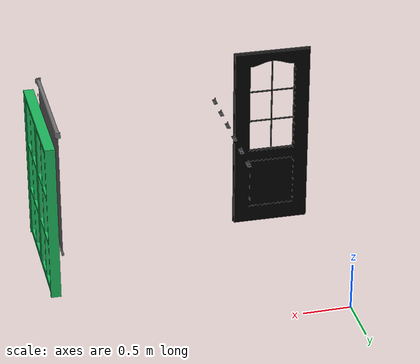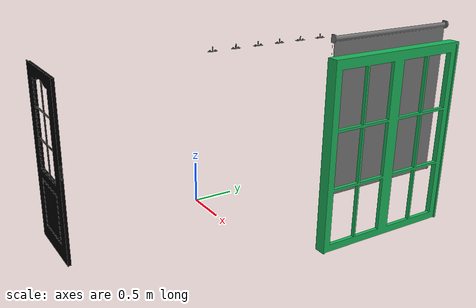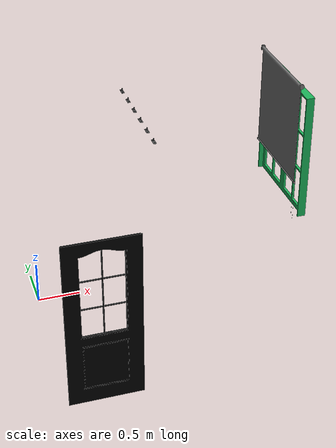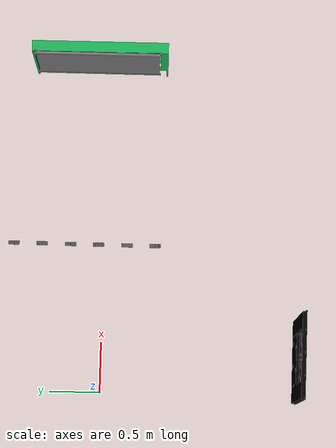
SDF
<sdf version="1.6">
 <world name="default">
  <model name="part60.obj">
   <static>1</static>
   <pose>-12.0 -13.9 0 0 0 0</pose>
   <link name="link_d60">
    <inertial>
     <mass>0</mass>
     <inertia>
      <ixx>0.166667</ixx>
      <ixy>0</ixy>
      <ixz>0</ixz>
      <iyy>0.166667</iyy>
      <iyz>0</iyz>
      <izz>0.166667</izz>
     </inertia>
    </inertial>
    <collision concave="yes" name="collision_60">
     <geometry><mesh><scale>.1 .1 .1</scale><uri>fatihrmutfak/part60.obj</uri></mesh></geometry>
    </collision>
    <visual name="visual">
     <geometry><mesh><scale>.1 .1 .1</scale><uri>fatihrmutfak/part60.obj</uri></mesh></geometry>
     <material>
      <ambient>1 0 0 1</ambient>
      <diffuse>0.337300 0.337300 0.337300 1</diffuse>
      <specular>0.1 0.1 0.1 1</specular>
      <emissive>0 0 0 0</emissive>
     </material>
    </visual>
   </link>
  </model>
  <model name="part61.obj">
   <static>1</static>
   <pose>-12.0 -13.9 0 0 0 0</pose>
   <link name="link_d61">
    <inertial>
     <mass>0</mass>
     <inertia>
      <ixx>0.166667</ixx>
      <ixy>0</ixy>
      <ixz>0</ixz>
      <iyy>0.166667</iyy>
      <iyz>0</iyz>
      <izz>0.166667</izz>
     </inertia>
    </inertial>
    <collision concave="yes" name="collision_61">
     <geometry><mesh><scale>.1 .1 .1</scale><uri>fatihrmutfak/part61.obj</uri></mesh></geometry>
    </collision>
    <visual name="visual">
     <geometry><mesh><scale>.1 .1 .1</scale><uri>fatihrmutfak/part61.obj</uri></mesh></geometry>
     <material>
      <ambient>1 0 0 1</ambient>
      <diffuse>0.337300 0.337300 0.337300 1</diffuse>
      <specular>0.1 0.1 0.1 1</specular>
      <emissive>0 0 0 0</emissive>
     </material>
    </visual>
   </link>
  </model>
  <model name="part62.obj">
   <static>1</static>
   <pose>-12.0 -13.9 0 0 0 0</pose>
   <link name="link_d62">
    <inertial>
     <mass>0</mass>
     <inertia>
      <ixx>0.166667</ixx>
      <ixy>0</ixy>
      <ixz>0</ixz>
      <iyy>0.166667</iyy>
      <iyz>0</iyz>
      <izz>0.166667</izz>
     </inertia>
    </inertial>
    <collision concave="yes" name="collision_62">
     <geometry><mesh><scale>.1 .1 .1</scale><uri>fatihrmutfak/part62.obj</uri></mesh></geometry>
    </collision>
    <visual name="visual">
     <geometry><mesh><scale>.1 .1 .1</scale><uri>fatihrmutfak/part62.obj</uri></mesh></geometry>
     <material>
      <ambient>1 0 0 1</ambient>
      <diffuse>0.337300 0.337300 0.337300 1</diffuse>
      <specular>0.1 0.1 0.1 1</specular>
      <emissive>0 0 0 0</emissive>
     </material>
    </visual>
   </link>
  </model>
  <model name="part63.obj">
   <static>1</static>
   <pose>-12.0 -13.9 0 0 0 0</pose>
   <link name="link_d63">
    <inertial>
     <mass>0</mass>
     <inertia>
      <ixx>0.166667</ixx>
      <ixy>0</ixy>
      <ixz>0</ixz>
      <iyy>0.166667</iyy>
      <iyz>0</iyz>
      <izz>0.166667</izz>
     </inertia>
    </inertial>
    <collision concave="yes" name="collision_63">
     <geometry><mesh><scale>.1 .1 .1</scale><uri>fatihrmutfak/part63.obj</uri></mesh></geometry>
    </collision>
    <visual name="visual">
     <geometry><mesh><scale>.1 .1 .1</scale><uri>fatihrmutfak/part63.obj</uri></mesh></geometry>
     <material>
      <ambient>1 0 0 1</ambient>
      <diffuse>0.337300 0.337300 0.337300 1</diffuse>
      <specular>0.1 0.1 0.1 1</specular>
      <emissive>0 0 0 0</emissive>
     </material>
    </visual>
   </link>
  </model>
  <model name="part64.obj">
   <static>1</static>
   <pose>-12.0 -13.9 0 0 0 0</pose>
   <link name="link_d64">
    <inertial>
     <mass>0</mass>
     <inertia>
      <ixx>0.166667</ixx>
      <ixy>0</ixy>
      <ixz>0</ixz>
      <iyy>0.166667</iyy>
      <iyz>0</iyz>
      <izz>0.166667</izz>
     </inertia>
    </inertial>
    <collision concave="yes" name="collision_64">
     <geometry><mesh><scale>.1 .1 .1</scale><uri>fatihrmutfak/part64.obj</uri></mesh></geometry>
    </collision>
    <visual name="visual">
     <geometry><mesh><scale>.1 .1 .1</scale><uri>fatihrmutfak/part64.obj</uri></mesh></geometry>
     <material>
      <ambient>1 0 0 1</ambient>
      <diffuse>0.337300 0.337300 0.337300 1</diffuse>
      <specular>0.1 0.1 0.1 1</specular>
      <emissive>0 0 0 0</emissive>
     </material>
    </visual>
   </link>
  </model>
  <model name="part65.obj">
   <static>1</static>
   <pose>-12.0 -13.9 0 0 0 0</pose>
   <link name="link_d65">
    <inertial>
     <mass>0</mass>
     <inertia>
      <ixx>0.166667</ixx>
      <ixy>0</ixy>
      <ixz>0</ixz>
      <iyy>0.166667</iyy>
      <iyz>0</iyz>
      <izz>0.166667</izz>
     </inertia>
    </inertial>
    <collision concave="yes" name="collision_65">
     <geometry><mesh><scale>.1 .1 .1</scale><uri>fatihrmutfak/part65.obj</uri></mesh></geometry>
    </collision>
    <visual name="visual">
     <geometry><mesh><scale>.1 .1 .1</scale><uri>fatihrmutfak/part65.obj</uri></mesh></geometry>
     <material>
      <ambient>1 0 0 1</ambient>
      <diffuse>0.337300 0.337300 0.337300 1</diffuse>
      <specular>0.1 0.1 0.1 1</specular>
      <emissive>0 0 0 0</emissive>
     </material>
    </visual>
   </link>
  </model>
  <model name="part66.obj">
   <static>1</static>
   <pose>-12.0 -13.9 0 0 0 0</pose>
   <link name="link_d66">
    <inertial>
     <mass>0</mass>
     <inertia>
      <ixx>0.166667</ixx>
      <ixy>0</ixy>
      <ixz>0</ixz>
      <iyy>0.166667</iyy>
      <iyz>0</iyz>
      <izz>0.166667</izz>
     </inertia>
    </inertial>
    <collision concave="yes" name="collision_66">
     <geometry><mesh><scale>.1 .1 .1</scale><uri>fatihrmutfak/part66.obj</uri></mesh></geometry>
    </collision>
    <visual name="visual">
     <geometry><mesh><scale>.1 .1 .1</scale><uri>fatihrmutfak/part66.obj</uri></mesh></geometry>
     <material>
      <ambient>1 0 0 1</ambient>
      <diffuse>0.451000 0.451000 0.451000 1</diffuse>
      <specular>0.1 0.1 0.1 1</specular>
      <emissive>0 0 0 0</emissive>
     </material>
    </visual>
   </link>
  </model>
  <model name="part67.obj">
   <static>1</static>
   <pose>-12.0 -13.9 0 0 0 0</pose>
   <link name="link_d67">
    <inertial>
     <mass>0</mass>
     <inertia>
      <ixx>0.166667</ixx>
      <ixy>0</ixy>
      <ixz>0</ixz>
      <iyy>0.166667</iyy>
      <iyz>0</iyz>
      <izz>0.166667</izz>
     </inertia>
    </inertial>
    <collision concave="yes" name="collision_67">
     <geometry><mesh><scale>.1 .1 .1</scale><uri>fatihrmutfak/part67.obj</uri></mesh></geometry>
    </collision>
    <visual name="visual">
     <geometry><mesh><scale>.1 .1 .1</scale><uri>fatihrmutfak/part67.obj</uri></mesh></geometry>
     <material>
      <ambient>1 0 0 1</ambient>
      <diffuse>0.102000 0.694100 0.345100 1</diffuse>
      <specular>0.1 0.1 0.1 1</specular>
      <emissive>0 0 0 0</emissive>
     </material>
    </visual>
   </link>
  </model>
  <model name="part68.obj">
   <static>1</static>
   <pose>-12.0 -13.9 0 0 0 0</pose>
   <link name="link_d68">
    <inertial>
     <mass>0</mass>
     <inertia>
      <ixx>0.166667</ixx>
      <ixy>0</ixy>
      <ixz>0</ixz>
      <iyy>0.166667</iyy>
      <iyz>0</iyz>
      <izz>0.166667</izz>
     </inertia>
    </inertial>
    <collision concave="yes" name="collision_68">
     <geometry><mesh><scale>.1 .1 .1</scale><uri>fatihrmutfak/part68.obj</uri></mesh></geometry>
    </collision>
    <visual name="visual">
     <geometry><mesh><scale>.1 .1 .1</scale><uri>fatihrmutfak/part68.obj</uri></mesh></geometry>
     <material>
      <ambient>1 0 0 1</ambient>
      <diffuse>0.000000 0.000000 0.000000 1</diffuse>
      <specular>0.1 0.1 0.1 1</specular>
      <emissive>0 0 0 0</emissive>
     </material>
    </visual>
   </link>
  </model>
  <model name="part69.obj">
   <static>1</static>
   <pose>-12.0 -13.9 0 0 0 0</pose>
   <link name="link_d69">
    <inertial>
     <mass>0</mass>
     <inertia>
      <ixx>0.166667</ixx>
      <ixy>0</ixy>
      <ixz>0</ixz>
      <iyy>0.166667</iyy>
      <iyz>0</iyz>
      <izz>0.166667</izz>
     </inertia>
    </inertial>
    <collision concave="yes" name="collision_69">
     <geometry><mesh><scale>.1 .1 .1</scale><uri>fatihrmutfak/part69.obj</uri></mesh></geometry>
    </collision>
    <visual name="visual">
     <geometry><mesh><scale>.1 .1 .1</scale><uri>fatihrmutfak/part69.obj</uri></mesh></geometry>
     <material>
      <ambient>1 0 0 1</ambient>
      <diffuse>0.000000 0.000000 0.000000 1</diffuse>
      <specular>0.1 0.1 0.1 1</specular>
      <emissive>0 0 0 0</emissive>
     </material>
    </visual>
   </link>
  </model>
 </world>
</sdf>
